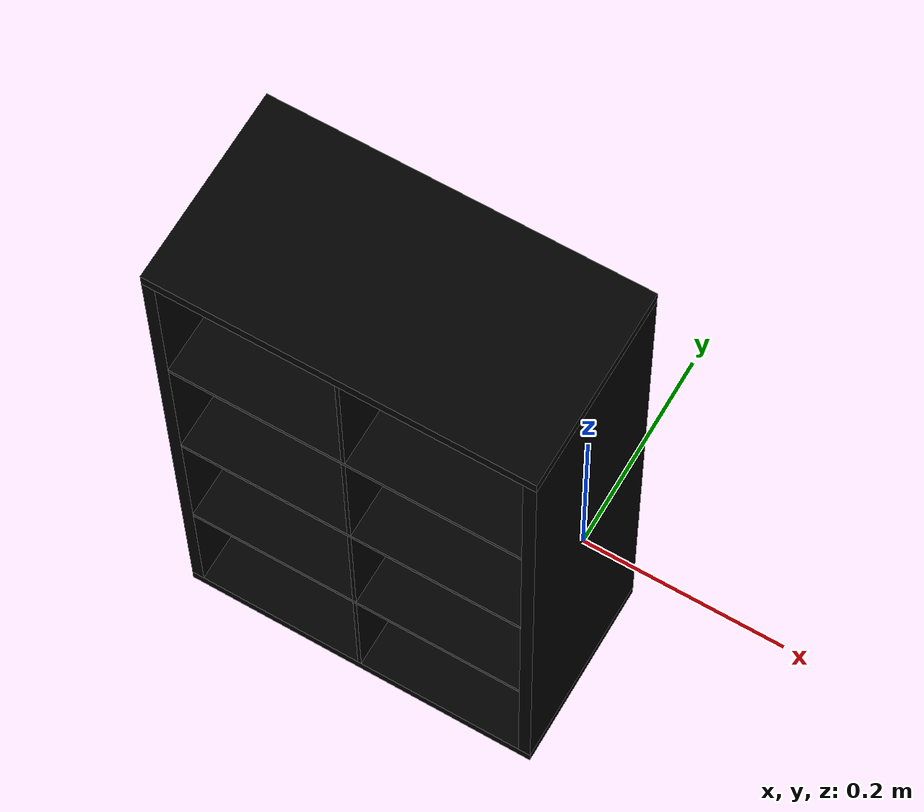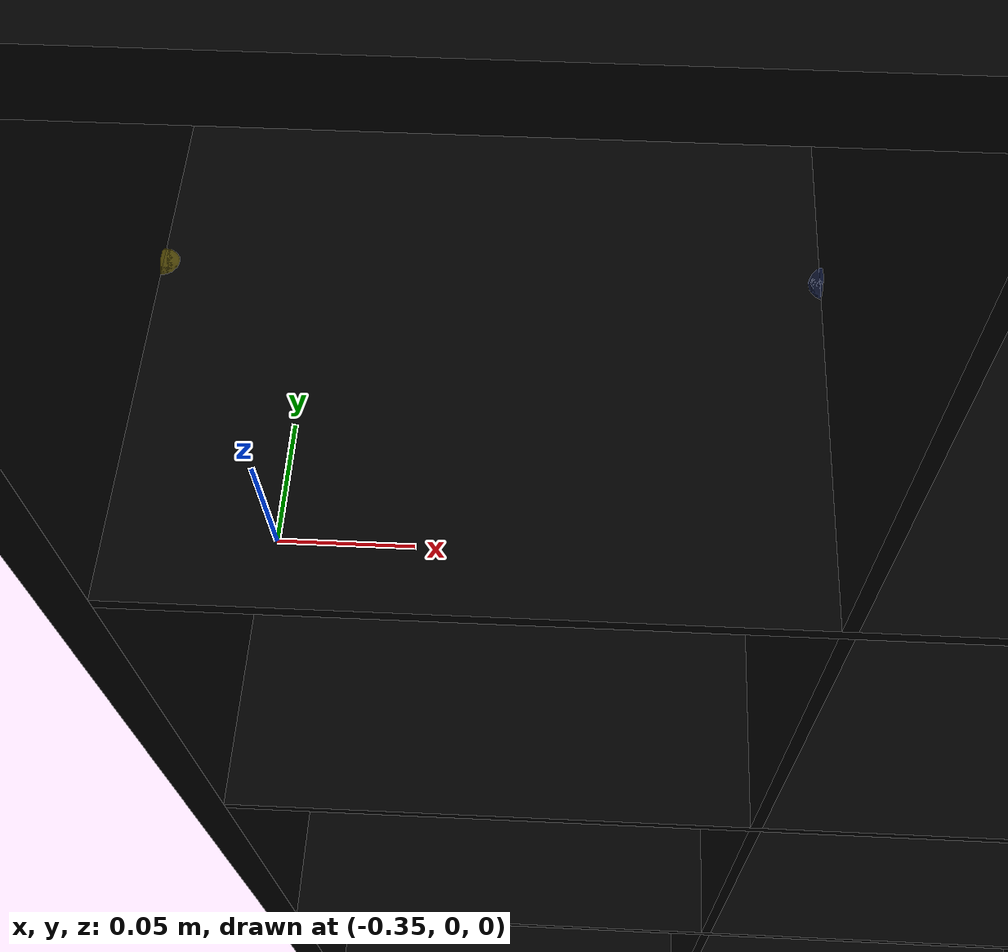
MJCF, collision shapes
<mujoco model="bookcase_expedit_0376">
    <custom>
        <numeric data="-0.610358 0.179496 0.00633 0.707062 -0.007954 -0.707062 -0.007954" name="0_part0_initpos"/>
        <numeric data="0.140723 0.068538 0.00633 0.999959 -0.0 -0.0 -0.009001" name="10_part9_initpos"/>
        <numeric data="0.565507 -0.128144 0.001878 0.999962 0.0 -0.0 -0.008745" name="9_part8_initpos"/>
        <numeric data="0.543897 0.119211 0.001878 0.999936 0.0 -0.0 0.011288" name="8_part7_initpos"/>
        <numeric data="0.135882 0.347456 0.001878 0.999938 0.0 0.0 0.011097" name="7_part6_initpos"/>
        <numeric data="-0.403732 -0.095554 0.001982 0.707107 1.5e-05 -0.707107 1.4e-05" name="6_part5_initpos"/>
        <numeric data="0.248668 -0.151192 0.001878 0.498788 0.501209 0.498788 -0.501209" name="5_part4_initpos"/>
        <numeric data="0.040847 -0.184879 0.001878 0.707089 -0.005013 -0.707089 -0.005013" name="4_part3_initpos"/>
        <numeric data="-0.59904 -0.091625 0.001878 0.706827 -0.019886 -0.706827 -0.019886" name="3_part2_initpos"/>
        <numeric data="0.531999 0.371208 0.00633 1.0 -0.0 0.0 -5e-06" name="2_part10_initpos"/>
        <numeric data="-0.187738 0.117936 0.00633 -0.499983 -0.500017 0.499983 -0.500017" name="1_part1_initpos"/>
    </custom>
    <asset>
        <mesh file="bookcase_expedit_0376/0.stl" name="part0" scale="0.000250416 0.000250416 0.000250416"/>
        <mesh file="bookcase_expedit_0376/9.stl" name="part9" scale="0.000250416 0.000250416 0.000250416"/>
        <mesh file="bookcase_expedit_0376/8.stl" name="part8" scale="0.000250416 0.000250416 0.000250416"/>
        <mesh file="bookcase_expedit_0376/7.stl" name="part7" scale="0.000250416 0.000250416 0.000250416"/>
        <mesh file="bookcase_expedit_0376/6.stl" name="part6" scale="0.000250416 0.000250416 0.000250416"/>
        <mesh file="bookcase_expedit_0376/5.stl" name="part5" scale="0.000250416 0.000250416 0.000250416"/>
        <mesh file="bookcase_expedit_0376/4.stl" name="part4" scale="0.000250416 0.000250416 0.000250416"/>
        <mesh file="bookcase_expedit_0376/3.stl" name="part3" scale="0.000250416 0.000250416 0.000250416"/>
        <mesh file="bookcase_expedit_0376/2.stl" name="part2" scale="0.000250416 0.000250416 0.000250416"/>
        <mesh file="bookcase_expedit_0376/10.stl" name="part10" scale="0.000250416 0.000250416 0.000250416"/>
        <mesh file="bookcase_expedit_0376/1.stl" name="part1" scale="0.000250416 0.000250416 0.000250416"/>
    </asset>
    <equality>
        <weld active="false" body1="0_part0" body2="10_part9" solimp="1 1 0.5" solref="0.01 0.3"/>
        <weld active="false" body1="2_part10" body2="1_part1" solimp="1 1 0.5" solref="0.01 0.3"/>
        <weld active="false" body1="8_part7" body2="6_part5" solimp="1 1 0.5" solref="0.01 0.3"/>
        <weld active="false" body1="8_part7" body2="3_part2" solimp="1 1 0.5" solref="0.01 0.3"/>
        <weld active="false" body1="8_part7" body2="4_part3" solimp="1 1 0.5" solref="0.01 0.3"/>
        <weld active="false" body1="8_part7" body2="5_part4" solimp="1 1 0.5" solref="0.01 0.3"/>
        <weld active="false" body1="9_part8" body2="6_part5" solimp="1 1 0.5" solref="0.01 0.3"/>
        <weld active="false" body1="9_part8" body2="3_part2" solimp="1 1 0.5" solref="0.01 0.3"/>
        <weld active="false" body1="9_part8" body2="4_part3" solimp="1 1 0.5" solref="0.01 0.3"/>
        <weld active="false" body1="9_part8" body2="5_part4" solimp="1 1 0.5" solref="0.01 0.3"/>
        <weld active="false" body1="2_part10" body2="6_part5" solimp="1 1 0.5" solref="0.01 0.3"/>
        <weld active="false" body1="2_part10" body2="3_part2" solimp="1 1 0.5" solref="0.01 0.3"/>
        <weld active="false" body1="2_part10" body2="4_part3" solimp="1 1 0.5" solref="0.01 0.3"/>
        <weld active="false" body1="2_part10" body2="5_part4" solimp="1 1 0.5" solref="0.01 0.3"/>
        <weld active="false" body1="7_part6" body2="6_part5" solimp="1 1 0.5" solref="0.01 0.3"/>
        <weld active="false" body1="7_part6" body2="3_part2" solimp="1 1 0.5" solref="0.01 0.3"/>
        <weld active="false" body1="7_part6" body2="4_part3" solimp="1 1 0.5" solref="0.01 0.3"/>
        <weld active="false" body1="7_part6" body2="5_part4" solimp="1 1 0.5" solref="0.01 0.3"/>
        <weld active="false" body1="0_part0" body2="8_part7" solimp="1 1 0.5" solref="0.01 0.3"/>
        <weld active="false" body1="0_part0" body2="9_part8" solimp="1 1 0.5" solref="0.01 0.3"/>
        <weld active="false" body1="0_part0" body2="2_part10" solimp="1 1 0.5" solref="0.01 0.3"/>
        <weld active="false" body1="0_part0" body2="7_part6" solimp="1 1 0.5" solref="0.01 0.3"/>
        <weld active="false" body1="8_part7" body2="1_part1" solimp="1 1 0.5" solref="0.01 0.3"/>
        <weld active="false" body1="9_part8" body2="1_part1" solimp="1 1 0.5" solref="0.01 0.3"/>
        <weld active="false" body1="7_part6" body2="1_part1" solimp="1 1 0.5" solref="0.01 0.3"/>
    </equality>
    <worldbody>
        <body name="0_part0" pos="0.0 0.0 -3.0049919999999998e-09" quat="1 0 0 0">
            <geom conaffinity="0" contype="0" density="0" mesh="part0" name="0_part0_mesh" pos="0.0 0.0 0.0"
                  rgba="0.82 0.71 0.55 1" type="mesh"/>
            <site name="0_part0_horizontal_radius_site" pos="0.0 0.0 -3.0049919999999998e-09" quat="1 0 0 0"
                  rgba="0 0 0 0" size="0.000250416"/>
            <site name="0_part0_top_site" pos="0.0 0.0 0.30212690400000003" quat="1 0 0 0" rgba="0 0 0 0"
                  size="0.000250416"/>
            <site name="0_part0_bottom_site" pos="0.0 0.0 -0.302126910009984" quat="1 0 0 0" rgba="0 0 0 0"
                  size="0.000250416"/>
            <site name="0_part0_corner_site8" pos="-0.006360566400000001 0.0989863161275376 0.30212690400000003"
                  quat="1 0 0 0" rgba="0 0 0 0" size="0.00500832"/>
            <site name="0_part0_corner_site7" pos="0.006360566400000001 0.0989863161275376 0.30212690400000003"
                  quat="1 0 0 0" rgba="0 0 0 0" size="0.00500832"/>
            <site name="0_part0_corner_site6" pos="0.006360566400000001 -0.0989863161275376 0.30212690400000003"
                  quat="1 0 0 0" rgba="0 0 0 0" size="0.00500832"/>
            <site name="0_part0_corner_site5" pos="-0.006360566400000001 -0.0989863161275376 0.30212690400000003"
                  quat="1 0 0 0" rgba="0 0 0 0" size="0.00500832"/>
            <site name="0_part0_corner_site4" pos="-0.006360566400000001 0.0989863161275376 -0.302126910009984"
                  quat="1 0 0 0" rgba="0 0 0 0" size="0.00500832"/>
            <site name="0_part0_corner_site3" pos="0.006360566400000001 0.0989863161275376 -0.302126910009984"
                  quat="1 0 0 0" rgba="0 0 0 0" size="0.00500832"/>
            <site name="0_part0_corner_site2" pos="0.006360566400000001 -0.0989863161275376 -0.302126910009984"
                  quat="1 0 0 0" rgba="0 0 0 0" size="0.00500832"/>
            <site name="0_part0_corner_site1" pos="-0.006360566400000001 -0.0989863161275376 -0.302126910009984"
                  quat="1 0 0 0" rgba="0 0 0 0" size="0.00500832"/>
            <site name="rightwall-floor,0,conn_site1" pos="-0.00375624 0.0 -0.30212690400000003" quat="1 0 0 0"
                  rgba="0.9019 0.0980 0.2941 0.3" size="0.00500832"/>
            <site name="rightwall-top,0,conn_site1" pos="0.001001664 0.0 0.3022521120000001" quat="1 0 0 0"
                  rgba="0.2352 0.7058 0.2941 0.3" size="0.00500832"/>
            <geom density="50" name="noviz_collision_0_part1_0" pos="1.054501776e-05 0.0 0.0" quat="1 0 0 0"
                  rgba="0 0 0 0" size="0.00637111893024 0.09898631460000001 0.30212690400000003" solref="0.001 1"
                  type="box"/>
        </body>
        <body name="10_part9" pos="-0.18008353620000003 -1.5275376000000001e-09 0.30848746439001606" quat="1 0 0 0">
            <geom conaffinity="0" contype="0" density="0" mesh="part9" name="10_part9_mesh" pos="0.0 0.0 0.0"
                  rgba="0.82 0.71 0.55 1" type="mesh"/>
            <site name="10_part9_horizontal_radius_site" pos="0.0 0.0 0.0" quat="1 0 0 0" rgba="0 0 0 0"
                  size="0.000250416"/>
            <site name="10_part9_top_site" pos="0.0 0.0 0.006360566400000001" quat="1 0 0 0" rgba="0 0 0 0"
                  size="0.000250416"/>
            <site name="10_part9_bottom_site" pos="0.0 0.0 -0.006360566400000001" quat="1 0 0 0" rgba="0 0 0 0"
                  size="0.000250416"/>
            <site name="10_part9_corner_site8" pos="-0.18644410260000002 0.09898631460000001 0.006360566400000001"
                  quat="1 0 0 0" rgba="0 0 0 0" size="0.00500832"/>
            <site name="10_part9_corner_site7" pos="0.18644410260000002 0.09898631460000001 0.006360566400000001"
                  quat="1 0 0 0" rgba="0 0 0 0" size="0.00500832"/>
            <site name="10_part9_corner_site6" pos="0.18644410260000002 -0.09898631460000001 0.006360566400000001"
                  quat="1 0 0 0" rgba="0 0 0 0" size="0.00500832"/>
            <site name="10_part9_corner_site5" pos="-0.18644410260000002 -0.09898631460000001 0.006360566400000001"
                  quat="1 0 0 0" rgba="0 0 0 0" size="0.00500832"/>
            <site name="10_part9_corner_site4" pos="-0.18644410260000002 0.09898631460000001 -0.006360566400000001"
                  quat="1 0 0 0" rgba="0 0 0 0" size="0.00500832"/>
            <site name="10_part9_corner_site3" pos="0.18644410260000002 0.09898631460000001 -0.006360566400000001"
                  quat="1 0 0 0" rgba="0 0 0 0" size="0.00500832"/>
            <site name="10_part9_corner_site2" pos="0.18644410260000002 -0.09898631460000001 -0.006360566400000001"
                  quat="1 0 0 0" rgba="0 0 0 0" size="0.00500832"/>
            <site name="10_part9_corner_site1" pos="-0.18644410260000002 -0.09898631460000001 -0.006360566400000001"
                  quat="1 0 0 0" rgba="0 0 0 0" size="0.00500832"/>
            <site name="top-rightwall,0,conn_site1" pos="0.18108520020000002 0.0 -0.00623536340832" quat="1 0 0 0"
                  rgba="0.2352 0.7058 0.2941 0.3" size="0.00500832"/>
            <geom density="50" name="noviz_collision_10_part9_0" pos="0.0 0.0 0.0" quat="1 0 0 0" rgba="0 0 0 0"
                  size="0.18644410260000002 0.09898631460000001 0.006360571408320001" solref="0.001 1" type="box"/>
        </body>
        <body name="9_part8" pos="-0.18008353620000003 0.0 -6.0099839999999996e-09" quat="1 0 0 0">
            <geom conaffinity="0" contype="0" density="0" mesh="part8" name="9_part8_mesh" pos="0.0 0.0 0.0"
                  rgba="0.82 0.71 0.55 1" type="mesh"/>
            <site name="9_part8_horizontal_radius_site" pos="-2.9549088000000005e-09 0.0 -0.0" quat="1 0 0 0"
                  rgba="0 0 0 0" size="0.000250416"/>
            <site name="9_part8_top_site" pos="-2.9549088000000005e-09 0.0 0.00190816992" quat="1 0 0 0" rgba="0 0 0 0"
                  size="0.000250416"/>
            <site name="9_part8_bottom_site" pos="-2.9549088000000005e-09 0.0 -0.00190816992" quat="1 0 0 0"
                  rgba="0 0 0 0" size="0.000250416"/>
            <site name="9_part8_corner_site8" pos="-0.1737229727549088 0.0989863161275376 0.00190816992" quat="1 0 0 0"
                  rgba="0 0 0 0" size="0.00500832"/>
            <site name="9_part8_corner_site7" pos="0.17372296684509123 0.0989863161275376 0.00190816992" quat="1 0 0 0"
                  rgba="0 0 0 0" size="0.00500832"/>
            <site name="9_part8_corner_site6" pos="0.17372296684509123 -0.0989863161275376 0.00190816992" quat="1 0 0 0"
                  rgba="0 0 0 0" size="0.00500832"/>
            <site name="9_part8_corner_site5" pos="-0.1737229727549088 -0.0989863161275376 0.00190816992" quat="1 0 0 0"
                  rgba="0 0 0 0" size="0.00500832"/>
            <site name="9_part8_corner_site4" pos="-0.1737229727549088 0.0989863161275376 -0.00190816992" quat="1 0 0 0"
                  rgba="0 0 0 0" size="0.00500832"/>
            <site name="9_part8_corner_site3" pos="0.17372296684509123 0.0989863161275376 -0.00190816992" quat="1 0 0 0"
                  rgba="0 0 0 0" size="0.00500832"/>
            <site name="9_part8_corner_site2" pos="0.17372296684509123 -0.0989863161275376 -0.00190816992"
                  quat="1 0 0 0" rgba="0 0 0 0" size="0.00500832"/>
            <site name="9_part8_corner_site1" pos="-0.1737229727549088 -0.0989863161275376 -0.00190816992"
                  quat="1 0 0 0" rgba="0 0 0 0" size="0.00500832"/>
            <site name="shelf-leftwall,0,conn_site2" pos="-0.17400468779999997 0.0 -0.0010016589916800002"
                  quat="1 0 0 0" rgba="1.0 0.8823 0.0980 0.3" size="0.00500832"/>
            <site name="floor-divider,0,180,conn_site3" pos="0.0 0.0 0.0019081599033600005" quat="1 0 0 0"
                  rgba="0.2627 0.3882 0.8470 0.3" size="0.00500832"/>
            <geom density="50" name="noviz_collision_9_part8_0" pos="0.0 0.0 0.0" quat="1 0 0 0" rgba="0 0 0 0"
                  size="0.1737229698 0.09898631460000001 0.00190816992" solref="0.001 1" type="box"/>
        </body>
        <body name="8_part7" pos="-0.18008353620000003 0.0 -0.15201754296998402" quat="1 0 0 0">
            <geom conaffinity="0" contype="0" density="0" mesh="part7" name="8_part7_mesh" pos="0.0 0.0 0.0"
                  rgba="0.82 0.71 0.55 1" type="mesh"/>
            <site name="8_part7_horizontal_radius_site" pos="-2.9549088000000005e-09 0.0 0.0" quat="1 0 0 0"
                  rgba="0 0 0 0" size="0.000250416"/>
            <site name="8_part7_top_site" pos="-2.9549088000000005e-09 0.0 0.00190816992" quat="1 0 0 0" rgba="0 0 0 0"
                  size="0.000250416"/>
            <site name="8_part7_bottom_site" pos="-2.9549088000000005e-09 0.0 -0.00190816992" quat="1 0 0 0"
                  rgba="0 0 0 0" size="0.000250416"/>
            <site name="8_part7_corner_site8" pos="-0.1737229727549088 0.0989863161275376 0.00190816992" quat="1 0 0 0"
                  rgba="0 0 0 0" size="0.00500832"/>
            <site name="8_part7_corner_site7" pos="0.17372296684509123 0.0989863161275376 0.00190816992" quat="1 0 0 0"
                  rgba="0 0 0 0" size="0.00500832"/>
            <site name="8_part7_corner_site6" pos="0.17372296684509123 -0.0989863161275376 0.00190816992" quat="1 0 0 0"
                  rgba="0 0 0 0" size="0.00500832"/>
            <site name="8_part7_corner_site5" pos="-0.1737229727549088 -0.0989863161275376 0.00190816992" quat="1 0 0 0"
                  rgba="0 0 0 0" size="0.00500832"/>
            <site name="8_part7_corner_site4" pos="-0.1737229727549088 0.0989863161275376 -0.00190816992" quat="1 0 0 0"
                  rgba="0 0 0 0" size="0.00500832"/>
            <site name="8_part7_corner_site3" pos="0.17372296684509123 0.0989863161275376 -0.00190816992" quat="1 0 0 0"
                  rgba="0 0 0 0" size="0.00500832"/>
            <site name="8_part7_corner_site2" pos="0.17372296684509123 -0.0989863161275376 -0.00190816992"
                  quat="1 0 0 0" rgba="0 0 0 0" size="0.00500832"/>
            <site name="8_part7_corner_site1" pos="-0.1737229727549088 -0.0989863161275376 -0.00190816992"
                  quat="1 0 0 0" rgba="0 0 0 0" size="0.00500832"/>
            <site name="shelf-leftwall,0,conn_site1" pos="-0.17275260779999999 0.0 -0.0014874710400000005"
                  quat="0.7071067 0 -0.7071068 0" rgba="1.0 0.8823 0.0980 0.3" size="0.00500832"/>
            <site name="floor-divider,0,180,conn_site2" pos="0.0 0.0 0.0019081523908800002" quat="1 0 0 0"
                  rgba="0.2627 0.3882 0.8470 0.3" size="0.00500832"/>
            <geom density="50" name="noviz_collision_8_part7_0" pos="0.0 0.0 0.0" quat="1 0 0 0" rgba="0 0 0 0"
                  size="0.1737229698 0.09898631460000001 0.0019081849449599998" solref="0.001 1" type="box"/>
        </body>
        <body name="7_part6" pos="-0.18008353620000003 0.0 0.1520175297480192" quat="1 0 0 0">
            <geom conaffinity="0" contype="0" density="0" mesh="part6" name="7_part6_mesh" pos="0.0 0.0 0.0"
                  rgba="0.82 0.71 0.55 1" type="mesh"/>
            <site name="7_part6_horizontal_radius_site" pos="-2.9549088000000005e-09 0.0 2.5041600000000004e-11"
                  quat="1 0 0 0" rgba="0 0 0 0" size="0.000250416"/>
            <site name="7_part6_top_site" pos="-2.9549088000000005e-09 0.0 0.0019081711470384" quat="1 0 0 0"
                  rgba="0 0 0 0" size="0.000250416"/>
            <site name="7_part6_bottom_site" pos="-2.9549088000000005e-09 0.0 -0.0019081710969552" quat="1 0 0 0"
                  rgba="0 0 0 0" size="0.000250416"/>
            <site name="7_part6_corner_site8" pos="-0.1737229727549088 0.0989863161275376 0.0019081711470384"
                  quat="1 0 0 0" rgba="0 0 0 0" size="0.00500832"/>
            <site name="7_part6_corner_site7" pos="0.17372296684509123 0.0989863161275376 0.0019081711470384"
                  quat="1 0 0 0" rgba="0 0 0 0" size="0.00500832"/>
            <site name="7_part6_corner_site6" pos="0.17372296684509123 -0.0989863161275376 0.0019081711470384"
                  quat="1 0 0 0" rgba="0 0 0 0" size="0.00500832"/>
            <site name="7_part6_corner_site5" pos="-0.1737229727549088 -0.0989863161275376 0.0019081711470384"
                  quat="1 0 0 0" rgba="0 0 0 0" size="0.00500832"/>
            <site name="7_part6_corner_site4" pos="-0.1737229727549088 0.0989863161275376 -0.0019081710969552"
                  quat="1 0 0 0" rgba="0 0 0 0" size="0.00500832"/>
            <site name="7_part6_corner_site3" pos="0.17372296684509123 0.0989863161275376 -0.0019081710969552"
                  quat="1 0 0 0" rgba="0 0 0 0" size="0.00500832"/>
            <site name="7_part6_corner_site2" pos="0.17372296684509123 -0.0989863161275376 -0.0019081710969552"
                  quat="1 0 0 0" rgba="0 0 0 0" size="0.00500832"/>
            <site name="7_part6_corner_site1" pos="-0.1737229727549088 -0.0989863161275376 -0.0019081710969552"
                  quat="1 0 0 0" rgba="0 0 0 0" size="0.00500832"/>
            <site name="shelf-leftwall,0,conn_site3" pos="-0.1737542718 0.0 -0.00051585696"
                  quat="0.7071067 0 -0.7071068 0" rgba="1.0 0.8823 0.0980 0.3" size="0.00500832"/>
            <site name="floor-divider,0,180,conn_site4" pos="0.0 0.0 0.0019081523908800002" quat="1 0 0 0"
                  rgba="0.2627 0.3882 0.8470 0.3" size="0.00500832"/>
            <geom density="50" name="noviz_collision_7_part6_0" pos="0.0 0.0 0.0" quat="1 0 0 0" rgba="0 0 0 0"
                  size="0.1737229698 0.09898631460000001 0.0019081849449599998" solref="0.001 1" type="box"/>
        </body>
        <body name="6_part5" pos="-0.18008353620000003 0.0 0.22802630308608962" quat="1 0 0 0">
            <geom conaffinity="0" contype="0" density="0" mesh="part5" name="6_part5_mesh" pos="0.0 0.0 0.0"
                  rgba="0.82 0.71 0.55 1" type="mesh"/>
            <site name="6_part5_horizontal_radius_site" pos="0.0 0.0 0.0" quat="1 0 0 0" rgba="0 0 0 0"
                  size="0.000250416"/>
            <site name="6_part5_top_site" pos="0.0 0.0 0.0741006071242272" quat="1 0 0 0" rgba="0 0 0 0"
                  size="0.000250416"/>
            <site name="6_part5_bottom_site" pos="0.0 0.0 -0.0741006071242272" quat="1 0 0 0" rgba="0 0 0 0"
                  size="0.000250416"/>
            <site name="6_part5_corner_site8" pos="-0.00190816992 0.0989863161275376 0.0741006071242272" quat="1 0 0 0"
                  rgba="0 0 0 0" size="0.00500832"/>
            <site name="6_part5_corner_site7" pos="0.00190816992 0.0989863161275376 0.0741006071242272" quat="1 0 0 0"
                  rgba="0 0 0 0" size="0.00500832"/>
            <site name="6_part5_corner_site6" pos="0.00190816992 -0.0989863161275376 0.0741006071242272" quat="1 0 0 0"
                  rgba="0 0 0 0" size="0.00500832"/>
            <site name="6_part5_corner_site5" pos="-0.00190816992 -0.0989863161275376 0.0741006071242272" quat="1 0 0 0"
                  rgba="0 0 0 0" size="0.00500832"/>
            <site name="6_part5_corner_site4" pos="-0.00190816992 0.0989863161275376 -0.0741006071242272" quat="1 0 0 0"
                  rgba="0 0 0 0" size="0.00500832"/>
            <site name="6_part5_corner_site3" pos="0.00190816992 0.0989863161275376 -0.0741006071242272" quat="1 0 0 0"
                  rgba="0 0 0 0" size="0.00500832"/>
            <site name="6_part5_corner_site2" pos="0.00190816992 -0.0989863161275376 -0.0741006071242272" quat="1 0 0 0"
                  rgba="0 0 0 0" size="0.00500832"/>
            <site name="6_part5_corner_site1" pos="-0.00190816992 -0.0989863161275376 -0.0741006071242272"
                  quat="1 0 0 0" rgba="0 0 0 0" size="0.00500832"/>
            <site name="divider-floor,0,180,conn_site4" pos="0.0 0.0 -0.07410059856000001" quat="1 0 0 0"
                  rgba="0.2627 0.3882 0.8470 0.3" size="0.00500832"/>
            <geom density="50" name="noviz_collision_6_part5_0" pos="0.0 0.0 0.0" quat="1 0 0 0" rgba="0 0 0 0"
                  size="0.00190816992 0.09898631460000001 0.07410059856000001" solref="0.001 1" type="box"/>
        </body>
        <body name="5_part4" pos="-0.18008353620000003 0.0 0.07600875327974882" quat="1 0 0 0">
            <geom conaffinity="0" contype="0" density="0" mesh="part4" name="5_part4_mesh" pos="0.0 0.0 0.0"
                  rgba="0.82 0.71 0.55 1" type="mesh"/>
            <site name="5_part4_horizontal_radius_site" pos="0.0 0.0 6.009984e-10" quat="1 0 0 0" rgba="0 0 0 0"
                  size="0.000250416"/>
            <site name="5_part4_top_site" pos="0.0 0.0 0.07410060835126561" quat="1 0 0 0" rgba="0 0 0 0"
                  size="0.000250416"/>
            <site name="5_part4_bottom_site" pos="0.0 0.0 -0.0741006071242272" quat="1 0 0 0" rgba="0 0 0 0"
                  size="0.000250416"/>
            <site name="5_part4_corner_site8" pos="-0.00190816992 0.0989863161275376 0.07410060835126561" quat="1 0 0 0"
                  rgba="0 0 0 0" size="0.00500832"/>
            <site name="5_part4_corner_site7" pos="0.00190816992 0.0989863161275376 0.07410060835126561" quat="1 0 0 0"
                  rgba="0 0 0 0" size="0.00500832"/>
            <site name="5_part4_corner_site6" pos="0.00190816992 -0.0989863161275376 0.07410060835126561" quat="1 0 0 0"
                  rgba="0 0 0 0" size="0.00500832"/>
            <site name="5_part4_corner_site5" pos="-0.00190816992 -0.0989863161275376 0.07410060835126561"
                  quat="1 0 0 0" rgba="0 0 0 0" size="0.00500832"/>
            <site name="5_part4_corner_site4" pos="-0.00190816992 0.0989863161275376 -0.0741006071242272" quat="1 0 0 0"
                  rgba="0 0 0 0" size="0.00500832"/>
            <site name="5_part4_corner_site3" pos="0.00190816992 0.0989863161275376 -0.0741006071242272" quat="1 0 0 0"
                  rgba="0 0 0 0" size="0.00500832"/>
            <site name="5_part4_corner_site2" pos="0.00190816992 -0.0989863161275376 -0.0741006071242272" quat="1 0 0 0"
                  rgba="0 0 0 0" size="0.00500832"/>
            <site name="5_part4_corner_site1" pos="-0.00190816992 -0.0989863161275376 -0.0741006071242272"
                  quat="1 0 0 0" rgba="0 0 0 0" size="0.00500832"/>
            <site name="divider-floor,0,180,conn_site3" pos="0.0 0.0 -0.07410059856000001" quat="1 0 0 0"
                  rgba="0.2627 0.3882 0.8470 0.3" size="0.00500832"/>
            <geom density="50" name="noviz_collision_5_part4_0" pos="0.0 0.0 7.51248e-09" quat="1 0 0 0" rgba="0 0 0 0"
                  size="0.00190816992 0.09898631460000001 0.0741006236016" solref="0.001 1" type="box"/>
        </body>
        <body name="4_part3" pos="-0.18008353620000003 0.0 -0.22802631155015038" quat="1 0 0 0">
            <geom conaffinity="0" contype="0" density="0" mesh="part3" name="4_part3_mesh" pos="0.0 0.0 0.0"
                  rgba="0.82 0.71 0.55 1" type="mesh"/>
            <site name="4_part3_horizontal_radius_site" pos="0.0 0.0 0.0" quat="1 0 0 0" rgba="0 0 0 0"
                  size="0.000250416"/>
            <site name="4_part3_top_site" pos="0.0 0.0 0.07410059948653921" quat="1 0 0 0" rgba="0 0 0 0"
                  size="0.000250416"/>
            <site name="4_part3_bottom_site" pos="0.0 0.0 -0.07410059948653921" quat="1 0 0 0" rgba="0 0 0 0"
                  size="0.000250416"/>
            <site name="4_part3_corner_site8" pos="-0.00190816992 0.0989863161275376 0.07410059948653921" quat="1 0 0 0"
                  rgba="0 0 0 0" size="0.00500832"/>
            <site name="4_part3_corner_site7" pos="0.00190816992 0.0989863161275376 0.07410059948653921" quat="1 0 0 0"
                  rgba="0 0 0 0" size="0.00500832"/>
            <site name="4_part3_corner_site6" pos="0.00190816992 -0.0989863161275376 0.07410059948653921" quat="1 0 0 0"
                  rgba="0 0 0 0" size="0.00500832"/>
            <site name="4_part3_corner_site5" pos="-0.00190816992 -0.0989863161275376 0.07410059948653921"
                  quat="1 0 0 0" rgba="0 0 0 0" size="0.00500832"/>
            <site name="4_part3_corner_site4" pos="-0.00190816992 0.0989863161275376 -0.07410059948653921"
                  quat="1 0 0 0" rgba="0 0 0 0" size="0.00500832"/>
            <site name="4_part3_corner_site3" pos="0.00190816992 0.0989863161275376 -0.07410059948653921" quat="1 0 0 0"
                  rgba="0 0 0 0" size="0.00500832"/>
            <site name="4_part3_corner_site2" pos="0.00190816992 -0.0989863161275376 -0.07410059948653921"
                  quat="1 0 0 0" rgba="0 0 0 0" size="0.00500832"/>
            <site name="4_part3_corner_site1" pos="-0.00190816992 -0.0989863161275376 -0.07410059948653921"
                  quat="1 0 0 0" rgba="0 0 0 0" size="0.00500832"/>
            <site name="divider-floor,0,180,conn_site1" pos="0.0 0.0 -0.07410059856000001" quat="1 0 0 0"
                  rgba="0.2627 0.3882 0.8470 0.3" size="0.00500832"/>
            <geom density="50" name="noviz_collision_4_part3_0" pos="0.0 0.0 0.0" quat="1 0 0 0" rgba="0 0 0 0"
                  size="0.00190816992 0.09898631460000001 0.07410059856000001" solref="0.001 1" type="box"/>
        </body>
        <body name="3_part2" pos="-0.18008353620000003 0.0 -0.076008769606872" quat="1 0 0 0">
            <geom conaffinity="0" contype="0" density="0" mesh="part2" name="3_part2_mesh" pos="0.0 0.0 0.0"
                  rgba="0.82 0.71 0.55 1" type="mesh"/>
            <site name="3_part2_horizontal_radius_site" pos="0.0 0.0 0.0" quat="1 0 0 0" rgba="0 0 0 0"
                  size="0.000250416"/>
            <site name="3_part2_top_site" pos="0.0 0.0 0.0741006071242272" quat="1 0 0 0" rgba="0 0 0 0"
                  size="0.000250416"/>
            <site name="3_part2_bottom_site" pos="0.0 0.0 -0.0741006071242272" quat="1 0 0 0" rgba="0 0 0 0"
                  size="0.000250416"/>
            <site name="3_part2_corner_site8" pos="-0.00190816992 0.0989863161275376 0.0741006071242272" quat="1 0 0 0"
                  rgba="0 0 0 0" size="0.00500832"/>
            <site name="3_part2_corner_site7" pos="0.00190816992 0.0989863161275376 0.0741006071242272" quat="1 0 0 0"
                  rgba="0 0 0 0" size="0.00500832"/>
            <site name="3_part2_corner_site6" pos="0.00190816992 -0.0989863161275376 0.0741006071242272" quat="1 0 0 0"
                  rgba="0 0 0 0" size="0.00500832"/>
            <site name="3_part2_corner_site5" pos="-0.00190816992 -0.0989863161275376 0.0741006071242272" quat="1 0 0 0"
                  rgba="0 0 0 0" size="0.00500832"/>
            <site name="3_part2_corner_site4" pos="-0.00190816992 0.0989863161275376 -0.0741006071242272" quat="1 0 0 0"
                  rgba="0 0 0 0" size="0.00500832"/>
            <site name="3_part2_corner_site3" pos="0.00190816992 0.0989863161275376 -0.0741006071242272" quat="1 0 0 0"
                  rgba="0 0 0 0" size="0.00500832"/>
            <site name="3_part2_corner_site2" pos="0.00190816992 -0.0989863161275376 -0.0741006071242272" quat="1 0 0 0"
                  rgba="0 0 0 0" size="0.00500832"/>
            <site name="3_part2_corner_site1" pos="-0.00190816992 -0.0989863161275376 -0.0741006071242272"
                  quat="1 0 0 0" rgba="0 0 0 0" size="0.00500832"/>
            <site name="divider-floor,0,180,conn_site2" pos="0.0 0.0 -0.0741006236016" quat="1 0 0 0"
                  rgba="0.2627 0.3882 0.8470 0.3" size="0.00500832"/>
            <geom density="50" name="noviz_collision_3_part2_0" pos="0.0 0.0 -7.51248e-09" quat="1 0 0 0" rgba="0 0 0 0"
                  size="0.00190816992 0.09898631460000001 0.07410059856000001" solref="0.001 1" type="box"/>
        </body>
        <body name="2_part10" pos="-0.18008353620000003 -1.5275376000000001e-09 -0.30848747640998403" quat="1 0 0 0">
            <geom conaffinity="0" contype="0" density="0" mesh="part10" name="2_part10_mesh" pos="0.0 0.0 0.0"
                  rgba="0.82 0.71 0.55 1" type="mesh"/>
            <site name="2_part10_horizontal_radius_site" pos="0.0 0.0 0.0" quat="1 0 0 0" rgba="0 0 0 0"
                  size="0.000250416"/>
            <site name="2_part10_top_site" pos="0.0 0.0 0.006360566400000001" quat="1 0 0 0" rgba="0 0 0 0"
                  size="0.000250416"/>
            <site name="2_part10_bottom_site" pos="0.0 0.0 -0.006360566400000001" quat="1 0 0 0" rgba="0 0 0 0"
                  size="0.000250416"/>
            <site name="2_part10_corner_site8" pos="-0.18644410260000002 0.09898631460000001 0.006360566400000001"
                  quat="1 0 0 0" rgba="0 0 0 0" size="0.00500832"/>
            <site name="2_part10_corner_site7" pos="0.18644410260000002 0.09898631460000001 0.006360566400000001"
                  quat="1 0 0 0" rgba="0 0 0 0" size="0.00500832"/>
            <site name="2_part10_corner_site6" pos="0.18644410260000002 -0.09898631460000001 0.006360566400000001"
                  quat="1 0 0 0" rgba="0 0 0 0" size="0.00500832"/>
            <site name="2_part10_corner_site5" pos="-0.18644410260000002 -0.09898631460000001 0.006360566400000001"
                  quat="1 0 0 0" rgba="0 0 0 0" size="0.00500832"/>
            <site name="2_part10_corner_site4" pos="-0.18644410260000002 0.09898631460000001 -0.006360566400000001"
                  quat="1 0 0 0" rgba="0 0 0 0" size="0.00500832"/>
            <site name="2_part10_corner_site3" pos="0.18644410260000002 0.09898631460000001 -0.006360566400000001"
                  quat="1 0 0 0" rgba="0 0 0 0" size="0.00500832"/>
            <site name="2_part10_corner_site2" pos="0.18644410260000002 -0.09898631460000001 -0.006360566400000001"
                  quat="1 0 0 0" rgba="0 0 0 0" size="0.00500832"/>
            <site name="2_part10_corner_site1" pos="-0.18644410260000002 -0.09898631460000001 -0.006360566400000001"
                  quat="1 0 0 0" rgba="0 0 0 0" size="0.00500832"/>
            <site name="bottom-leftwall,0,conn_site1" pos="-0.1780113438 0.0 0.006360571408320001" quat="1 0 0 0"
                  rgba="0.9607 0.5098 0.1921 0.3" size="0.00500832"/>
            <site name="floor-divider,0,180,conn_site1" pos="0.0 0.0 0.006360571408320001" quat="1 0 0 0"
                  rgba="0.2627 0.3882 0.8470 0.3" size="0.00500832"/>
            <site name="floor-rightwall,0,conn_site1" pos="0.17632729620000004 0.0 0.006360571408320001" quat="1 0 0 0"
                  rgba="0.9019 0.0980 0.2941 0.3" size="0.00500832"/>
            <geom density="50" name="noviz_collision_2_part10_0" pos="0.0 0.0 0.0" quat="1 0 0 0" rgba="0 0 0 0"
                  size="0.18644410260000002 0.09898631460000001 0.006360571408320001" solref="0.001 1" type="box"/>
        </body>
        <body name="1_part1" pos="-0.36016707240000007 0.0 -3.0049919999999998e-09" quat="1 0 0 0">
            <geom conaffinity="0" contype="0" density="0" mesh="part1" name="1_part1_mesh" pos="0.0 0.0 0.0"
                  rgba="0.82 0.71 0.55 1" type="mesh"/>
            <site name="1_part1_horizontal_radius_site" pos="0.0 0.0 -3.0049919999999998e-09" quat="1 0 0 0"
                  rgba="0 0 0 0" size="0.000250416"/>
            <site name="1_part1_top_site" pos="0.0 0.0 0.30212690400000003" quat="1 0 0 0" rgba="0 0 0 0"
                  size="0.000250416"/>
            <site name="1_part1_bottom_site" pos="0.0 0.0 -0.302126910009984" quat="1 0 0 0" rgba="0 0 0 0"
                  size="0.000250416"/>
            <site name="1_part1_corner_site8" pos="-0.006360566400000001 0.0989863161275376 0.30212690400000003"
                  quat="1 0 0 0" rgba="0 0 0 0" size="0.00500832"/>
            <site name="1_part1_corner_site7" pos="0.006360566400000001 0.0989863161275376 0.30212690400000003"
                  quat="1 0 0 0" rgba="0 0 0 0" size="0.00500832"/>
            <site name="1_part1_corner_site6" pos="0.006360566400000001 -0.0989863161275376 0.30212690400000003"
                  quat="1 0 0 0" rgba="0 0 0 0" size="0.00500832"/>
            <site name="1_part1_corner_site5" pos="-0.006360566400000001 -0.0989863161275376 0.30212690400000003"
                  quat="1 0 0 0" rgba="0 0 0 0" size="0.00500832"/>
            <site name="1_part1_corner_site4" pos="-0.006360566400000001 0.0989863161275376 -0.302126910009984"
                  quat="1 0 0 0" rgba="0 0 0 0" size="0.00500832"/>
            <site name="1_part1_corner_site3" pos="0.006360566400000001 0.0989863161275376 -0.302126910009984"
                  quat="1 0 0 0" rgba="0 0 0 0" size="0.00500832"/>
            <site name="1_part1_corner_site2" pos="0.006360566400000001 -0.0989863161275376 -0.302126910009984"
                  quat="1 0 0 0" rgba="0 0 0 0" size="0.00500832"/>
            <site name="1_part1_corner_site1" pos="-0.006360566400000001 -0.0989863161275376 -0.302126910009984"
                  quat="1 0 0 0" rgba="0 0 0 0" size="0.00500832"/>
            <site name="leftwall-shelf,0,conn_site3" pos="0.006329269408320001 0.0 0.15150168"
                  quat="0.7071067 0 -0.7071068 0" rgba="1.0 0.8823 0.0980 0.3" size="0.00500832"/>
            <site name="leftwall-shelf,0,conn_site2" pos="0.006078853408320001 0.0 -0.00100166149584" quat="1 0 0 0"
                  rgba="1.0 0.8823 0.0980 0.3" size="0.00500832"/>
            <site name="leftwall-shelf,0,conn_site1" pos="0.0073309334083200015 0.0 -0.153505008"
                  quat="0.7071067 0 -0.7071068 0" rgba="1.0 0.8823 0.0980 0.3" size="0.00500832"/>
            <site name="leftwall-bottom,0,conn_site1" pos="0.00207219740832 0.0 -0.30212690400000003" quat="1 0 0 0"
                  rgba="0.9607 0.5098 0.1921 0.3" size="0.00500832"/>
            <geom density="50" name="noviz_collision_1_part1_0" pos="1.054501776e-05 0.0 0.0" quat="1 0 0 0"
                  rgba="0 0 0 0" size="0.00637111893024 0.09898631460000001 0.30212690400000003" solref="0.001 1"
                  type="box"/>
        </body>
    </worldbody>
    <actuator/>
    <sensor/>
    <contact/>
    <default/>
</mujoco>
